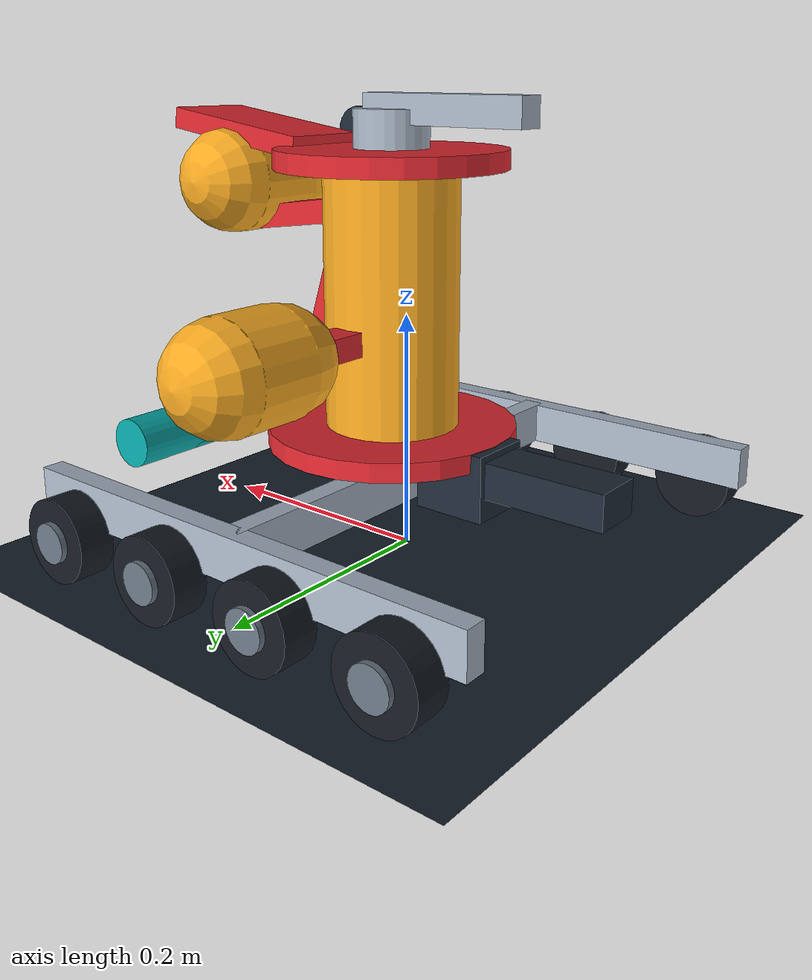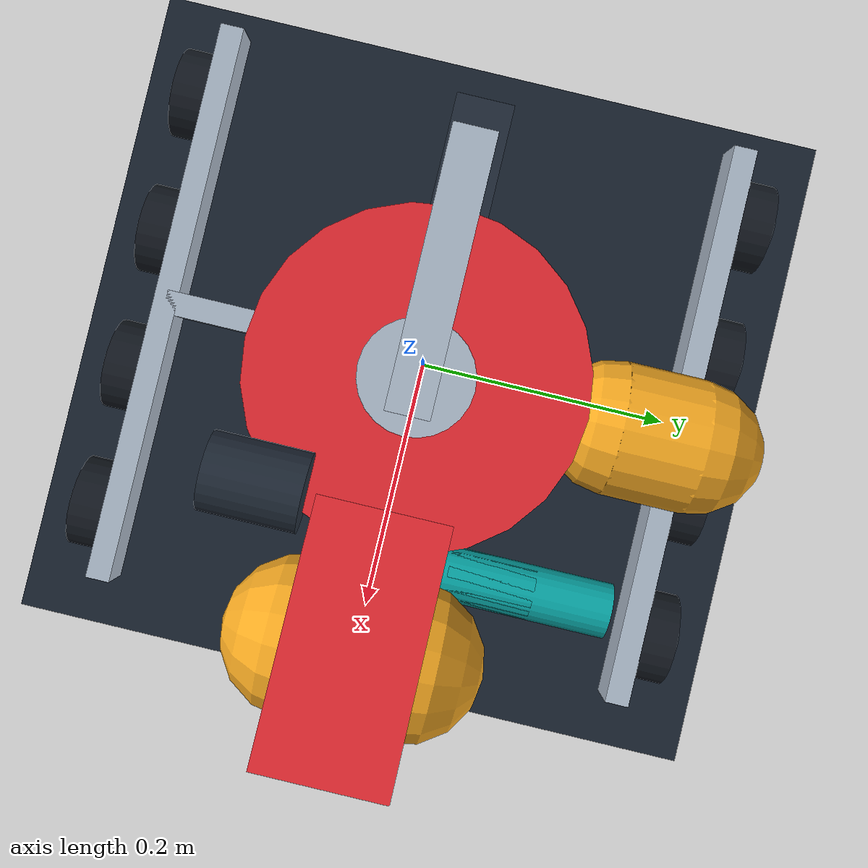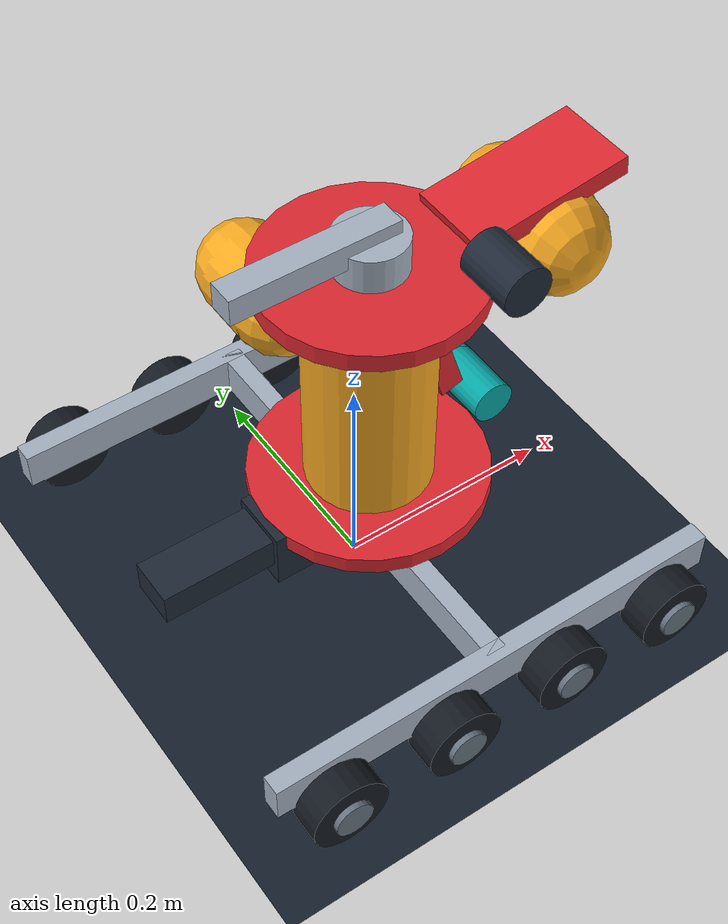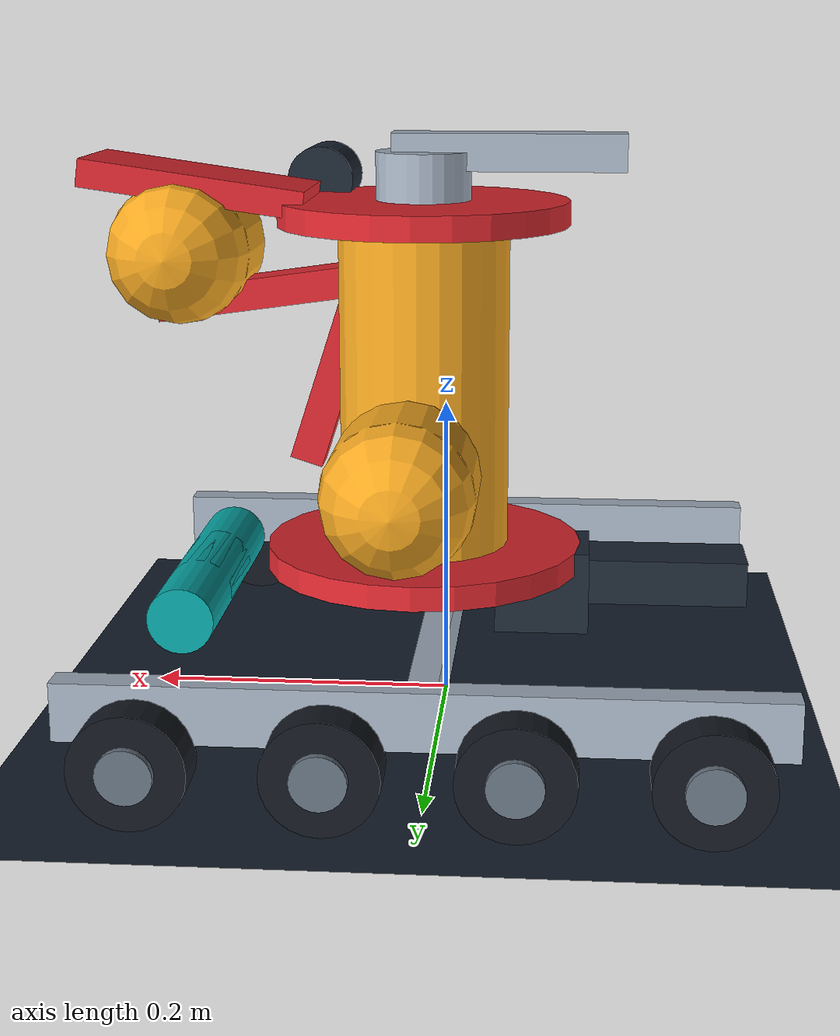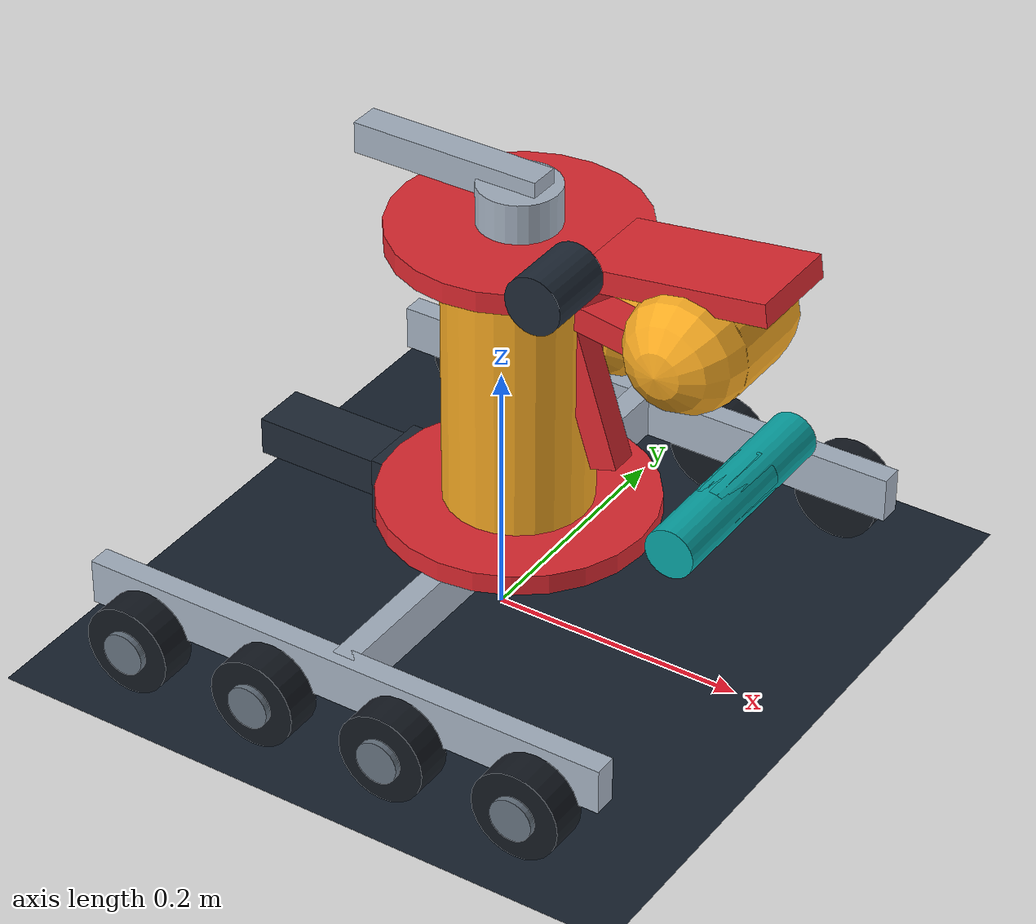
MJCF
<mujoco model="Barrel-Cam Carousel Setter"><compiler angle="degree" /><visual><global offwidth="800" offheight="600" /><quality offsamples="0" /><headlight ambient=".45 .45 .45" /></visual><worldbody><light pos="0 -1 3" castshadow="false" /><geom type="plane" size="2 2 .1" rgba=".09 .13 .18 1" /><geom type="box" pos="0 -0.2 0.059925" size="0.215 0.009 0.018" euler="0 0 0" rgba=".65 .7 .76 1" contype="0" conaffinity="0" /><geom type="box" pos="0 0.2 0.059925" size="0.215 0.009 0.018" euler="0 0 0" rgba=".65 .7 .76 1" contype="0" conaffinity="0" /><geom type="box" pos="0 0 0.059925" size="0.009 0.2 0.018" euler="0 0 0" rgba=".65 .7 .76 1" contype="0" conaffinity="0" /><geom type="cylinder" pos="-0.165 -0.221 0.034925" size="0.034925 0.015" euler="90 0 0" rgba=".08 .1 .13 1" contype="0" conaffinity="0" /><geom type="cylinder" pos="-0.165 -0.23800000000000002 0.034925" size="0.016763999999999998 0.003" euler="90 0 0" rgba=".4 .45 .5 1" contype="0" conaffinity="0" /><geom type="cylinder" pos="-0.05500000000000001 -0.221 0.034925" size="0.034925 0.015" euler="90 0 0" rgba=".08 .1 .13 1" contype="0" conaffinity="0" /><geom type="cylinder" pos="-0.05500000000000001 -0.23800000000000002 0.034925" size="0.016763999999999998 0.003" euler="90 0 0" rgba=".4 .45 .5 1" contype="0" conaffinity="0" /><geom type="cylinder" pos="0.05499999999999999 -0.221 0.034925" size="0.034925 0.015" euler="90 0 0" rgba=".08 .1 .13 1" contype="0" conaffinity="0" /><geom type="cylinder" pos="0.05499999999999999 -0.23800000000000002 0.034925" size="0.016763999999999998 0.003" euler="90 0 0" rgba=".4 .45 .5 1" contype="0" conaffinity="0" /><geom type="cylinder" pos="0.165 -0.221 0.034925" size="0.034925 0.015" euler="90 0 0" rgba=".08 .1 .13 1" contype="0" conaffinity="0" /><geom type="cylinder" pos="0.165 -0.23800000000000002 0.034925" size="0.016763999999999998 0.003" euler="90 0 0" rgba=".4 .45 .5 1" contype="0" conaffinity="0" /><geom type="cylinder" pos="-0.165 0.221 0.034925" size="0.034925 0.015" euler="90 0 0" rgba=".08 .1 .13 1" contype="0" conaffinity="0" /><geom type="cylinder" pos="-0.165 0.23800000000000002 0.034925" size="0.016763999999999998 0.003" euler="90 0 0" rgba=".4 .45 .5 1" contype="0" conaffinity="0" /><geom type="cylinder" pos="-0.05500000000000001 0.221 0.034925" size="0.034925 0.015" euler="90 0 0" rgba=".08 .1 .13 1" contype="0" conaffinity="0" /><geom type="cylinder" pos="-0.05500000000000001 0.23800000000000002 0.034925" size="0.016763999999999998 0.003" euler="90 0 0" rgba=".4 .45 .5 1" contype="0" conaffinity="0" /><geom type="cylinder" pos="0.05499999999999999 0.221 0.034925" size="0.034925 0.015" euler="90 0 0" rgba=".08 .1 .13 1" contype="0" conaffinity="0" /><geom type="cylinder" pos="0.05499999999999999 0.23800000000000002 0.034925" size="0.016763999999999998 0.003" euler="90 0 0" rgba=".4 .45 .5 1" contype="0" conaffinity="0" /><geom type="cylinder" pos="0.165 0.221 0.034925" size="0.034925 0.015" euler="90 0 0" rgba=".08 .1 .13 1" contype="0" conaffinity="0" /><geom type="cylinder" pos="0.165 0.23800000000000002 0.034925" size="0.016763999999999998 0.003" euler="90 0 0" rgba=".4 .45 .5 1" contype="0" conaffinity="0" /><geom type="box" pos="-0.13 0.0 0.084925" size="0.07 0.022 0.015" euler="0 0 0" rgba=".12 .16 .21 1" contype="0" conaffinity="0" /><geom type="cylinder" pos="0.015 0.0 0.215" size="0.031 0.15" euler="0.0 0.0 0.0" rgba=".65 .7 .76 1" contype="0" conaffinity="0" /><geom type="cylinder" pos="0.015 0.0 0.098" size="0.105 0.008" euler="0.0 0.0 0.0" rgba=".87 .16 .19 1" contype="0" conaffinity="0" /><geom type="cylinder" pos="0.015 0.0 0.326" size="0.095 0.008" euler="0.0 0.0 0.0" rgba=".87 .16 .19 1" contype="0" conaffinity="0" /><geom type="cylinder" pos="0.015 0.0 0.216" size="0.056 0.11" euler="0.0 0.0 0.0" rgba=".96 .66 .13 1" contype="0" conaffinity="0" /><geom type="box" pos="0.105 0.0 0.276" size="0.085 0.014 0.01" euler="0.0 8.0 0.0" rgba=".87 .16 .19 1" contype="0" conaffinity="0" /><geom type="capsule" pos="0.17 0.0 0.302" size="0.046 0.028999999999999998" euler="90.0 0.0 0.0" rgba=".96 .66 .13 1" contype="0" conaffinity="0" /><geom type="box" pos="0.015 0.09 0.185" size="0.085 0.014 0.01" euler="0.0 0.0 90.0" rgba=".87 .16 .19 1" contype="0" conaffinity="0" /><geom type="capsule" pos="0.015 0.16 0.185" size="0.045 0.027499999999999997" euler="90.0 0.0 0.0" rgba=".96 .66 .13 1" contype="0" conaffinity="0" /><geom type="box" pos="0.072 0.0 0.225" size="0.011 0.011 0.0675" euler="0.0 -18.0 0.0" rgba=".87 .16 .19 1" contype="0" conaffinity="0" /><geom type="cylinder" pos="0.145 0.112 0.104" size="0.02 0.06" euler="90.0 0.0 0.0" rgba=".03 .65 .65 1" contype="0" conaffinity="0" /><geom type="cylinder" pos="0.145 0.055 0.104" size="0.02 0.06" euler="90.0 0.0 0.0" rgba=".03 .65 .65 1" contype="0" conaffinity="0" /><geom type="box" pos="0.16 0.0 0.343" size="0.0725 0.0375 0.009" euler="0.0 -8.0 0.0" rgba=".87 .16 .19 1" contype="0" conaffinity="0" /><geom type="box" pos="-0.065 0.0 0.078" size="0.031 0.0275 0.0275" euler="0.0 0.0 0.0" rgba=".12 .16 .21 1" contype="0" conaffinity="0" /><geom type="cylinder" pos="0.088 -0.07 0.342" size="0.022 0.027" euler="90.0 0.0 0.0" rgba=".12 .16 .21 1" contype="0" conaffinity="0" /><geom type="box" pos="-0.04 0.0 0.365" size="0.075 0.012 0.012" euler="0.0 0.0 0.0" rgba=".65 .7 .76 1" contype="0" conaffinity="0" /></worldbody></mujoco>
